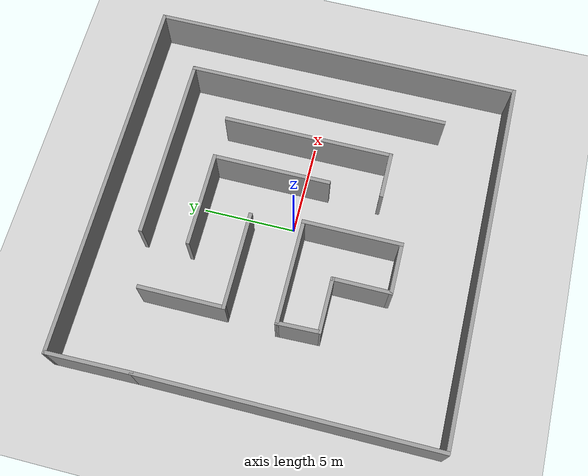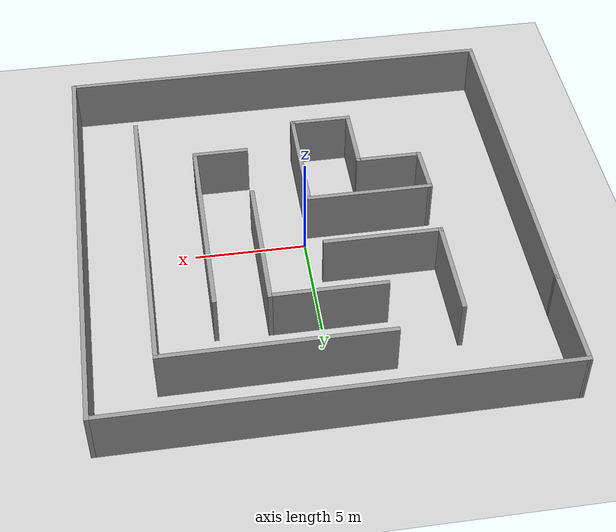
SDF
<sdf version="1.4">
 <world name="default">
  <light name="sun" type="directional">
   <pose>0 0 10 0 -0 0</pose>
   <diffuse>0.8 0.8 0.8 1</diffuse>
   <specular>0.2 0.2 0.2 1</specular>
   <attenuation>
    <range>1000</range>
    <constant>0.9</constant>
    <linear>0.01</linear>
    <quadratic>0.001</quadratic>
   </attenuation>
   <direction>-0.5 0.1 -0.9</direction>
  </light>
  <model name="ground_plane">
   <static>1</static>
   <link name="link">
    <collision name="collision">
     <geometry><plane><normal>0 0 1</normal><size>100 100</size></plane></geometry>
     <surface><friction><ode><mu>100</mu><mu2>50</mu2></ode></friction></surface>
    </collision>
    <visual name="visual">
     <cast_shadows>0</cast_shadows>
     <geometry><plane><normal>0 0 1</normal><size>100 100</size></plane></geometry>
     <material>
      <script><uri>file://media/materials/scripts/gazebo.material</uri><name>Gazebo/Grey</name></script>
     </material>
    </visual>
    <velocity_decay><linear>0</linear><angular>0</angular></velocity_decay>
   </link>
  </model>
  <model name="map2">
   <link name="Wall_11">
    <collision name="Wall_11_Collision">
     <geometry><box><size>15.7666 0.2 2.5</size></box></geometry>
     <pose>0 0 1.25 0 -0 0</pose>
    </collision>
    <visual name="Wall_11_Visual">
     <pose>0 0 1.25 0 -0 0</pose>
     <geometry><box><size>15.7666 0.2 2.5</size></box></geometry>
     <material>
      <script><uri>file://media/materials/scripts/gazebo.material</uri><name>Gazebo/Grey</name></script>
     </material>
    </visual>
    <velocity_decay><linear>0</linear><angular>0</angular></velocity_decay>
    <pose>-9.91698 -2.14515 0 0 0 -1.5708</pose>
   </link>
   <link name="Wall_12">
    <collision name="Wall_12_Collision">
     <geometry><box><size>20.0735 0.2 2.5</size></box></geometry>
     <pose>0 0 1.25 0 -0 0</pose>
    </collision>
    <visual name="Wall_12_Visual">
     <pose>0 0 1.25 0 -0 0</pose>
     <geometry><box><size>20.0735 0.2 2.5</size></box></geometry>
     <material>
      <script><uri>file://media/materials/scripts/gazebo.material</uri><name>Gazebo/Grey</name></script>
     </material>
    </visual>
    <velocity_decay><linear>0</linear><angular>0</angular></velocity_decay>
    <pose>0.019777 -9.92843 0 0 -0 0</pose>
   </link>
   <link name="Wall_13">
    <collision name="Wall_13_Collision">
     <geometry><box><size>20.1966 0.2 2.5</size></box></geometry>
     <pose>0 0 1.25 0 -0 0</pose>
    </collision>
    <visual name="Wall_13_Visual">
     <pose>0 0 1.25 0 -0 0</pose>
     <geometry><box><size>20.1966 0.2 2.5</size></box></geometry>
     <material>
      <script><uri>file://media/materials/scripts/gazebo.material</uri><name>Gazebo/Grey</name></script>
     </material>
    </visual>
    <velocity_decay><linear>0</linear><angular>0</angular></velocity_decay>
    <pose>9.95653 0.069855 0 0 -0 1.5708</pose>
   </link>
   <link name="Wall_14">
    <collision name="Wall_14_Collision">
     <geometry><box><size>20.135 0.2 2.5</size></box></geometry>
     <pose>0 0 1.25 0 -0 0</pose>
    </collision>
    <visual name="Wall_14_Visual">
     <pose>0 0 1.25 0 -0 0</pose>
     <geometry><box><size>20.135 0.2 2.5</size></box></geometry>
     <material>
      <script><uri>file://media/materials/scripts/gazebo.material</uri><name>Gazebo/Grey</name></script>
     </material>
    </visual>
    <velocity_decay><linear>0</linear><angular>0</angular></velocity_decay>
    <pose>-0.010987 10.0681 0 0 -0 3.14159</pose>
   </link>
   <link name="Wall_15">
    <collision name="Wall_15_Collision">
     <geometry><box><size>4.63043 0.2 2.5</size></box></geometry>
     <pose>0 0 1.25 0 -0 0</pose>
    </collision>
    <visual name="Wall_15_Visual">
     <pose>0 0 1.25 0 -0 0</pose>
     <geometry><box><size>4.63043 0.2 2.5</size></box></geometry>
     <material>
      <script><uri>file://media/materials/scripts/gazebo.material</uri><name>Gazebo/Grey</name></script>
     </material>
    </visual>
    <velocity_decay><linear>0</linear><angular>0</angular></velocity_decay>
    <pose>-9.94774 7.85313 0 0 0 -1.55691</pose>
   </link>
   <link name="Wall_17">
    <collision name="Wall_17_Collision">
     <geometry><box><size>4.63001 0.2 2.5</size></box></geometry>
     <pose>0 0 1.25 0 -0 0</pose>
    </collision>
    <visual name="Wall_17_Visual">
     <pose>0 0 1.25 0 -0 0</pose>
     <geometry><box><size>4.63001 0.2 2.5</size></box></geometry>
     <material>
      <script><uri>file://media/materials/scripts/gazebo.material</uri><name>Gazebo/Grey</name></script>
     </material>
    </visual>
    <velocity_decay><linear>0</linear><angular>0</angular></velocity_decay>
    <pose>-5.67155 4.40757 0 0 0 -1.5708</pose>
   </link>
   <link name="Wall_18">
    <collision name="Wall_18_Collision">
     <geometry><box><size>5.30681 0.2 2.5</size></box></geometry>
     <pose>0 0 1.25 0 -0 0</pose>
    </collision>
    <visual name="Wall_18_Visual">
     <pose>0 0 1.25 0 -0 0</pose>
     <geometry><box><size>5.30681 0.2 2.5</size></box></geometry>
     <material>
      <script><uri>file://media/materials/scripts/gazebo.material</uri><name>Gazebo/Grey</name></script>
     </material>
    </visual>
    <velocity_decay><linear>0</linear><angular>0</angular></velocity_decay>
    <pose>-3.11815 2.19257 0 0 -0 0</pose>
   </link>
   <link name="Wall_20">
    <collision name="Wall_20_Collision">
     <geometry><box><size>5.18376 0.2 2.5</size></box></geometry>
     <pose>0 0 1.25 0 -0 0</pose>
    </collision>
    <visual name="Wall_20_Visual">
     <pose>0 0 1.25 0 -0 0</pose>
     <geometry><box><size>5.18376 0.2 2.5</size></box></geometry>
     <material>
      <script><uri>file://media/materials/scripts/gazebo.material</uri><name>Gazebo/Grey</name></script>
     </material>
    </visual>
    <velocity_decay><linear>0</linear><angular>0</angular></velocity_decay>
    <pose>-0.287863 4.89979 0 0 -0 0</pose>
   </link>
   <link name="Wall_21">
    <collision name="Wall_21_Collision">
     <geometry><box><size>6.41432 0.2 2.5</size></box></geometry>
     <pose>0 0 1.25 0 -0 0</pose>
    </collision>
    <visual name="Wall_21_Visual">
     <pose>0 0 1.25 0 -0 0</pose>
     <geometry><box><size>6.41432 0.2 2.5</size></box></geometry>
     <material>
      <script><uri>file://media/materials/scripts/gazebo.material</uri><name>Gazebo/Grey</name></script>
     </material>
    </visual>
    <velocity_decay><linear>0</linear><angular>0</angular></velocity_decay>
    <pose>2.20402 1.79264 0 0 0 -1.5708</pose>
   </link>
   <link name="Wall_30">
    <collision name="Wall_30_Collision">
     <geometry><box><size>5.73751 0.2 2.5</size></box></geometry>
     <pose>0 0 1.25 0 -0 0</pose>
    </collision>
    <visual name="Wall_30_Visual">
     <pose>0 0 1.25 0 -0 0</pose>
     <geometry><box><size>5.73751 0.2 2.5</size></box></geometry>
     <material>
      <script><uri>file://media/materials/scripts/gazebo.material</uri><name>Gazebo/Grey</name></script>
     </material>
    </visual>
    <velocity_decay><linear>0</linear><angular>0</angular></velocity_decay>
    <pose>-3.02585 -0.576188 0 0 -0 0</pose>
   </link>
   <link name="Wall_31">
    <collision name="Wall_31_Collision">
     <geometry><box><size>5.36834 0.2 2.5</size></box></geometry>
     <pose>0 0 1.25 0 -0 0</pose>
    </collision>
    <visual name="Wall_31_Visual">
     <pose>0 0 1.25 0 -0 0</pose>
     <geometry><box><size>5.36834 0.2 2.5</size></box></geometry>
     <material>
      <script><uri>file://media/materials/scripts/gazebo.material</uri><name>Gazebo/Grey</name></script>
     </material>
    </visual>
    <velocity_decay><linear>0</linear><angular>0</angular></velocity_decay>
    <pose>-0.257099 -3.16036 0 0 0 -1.5708</pose>
   </link>
   <link name="Wall_32">
    <collision name="Wall_32_Collision">
     <geometry><box><size>2.8457 0.2 2.5</size></box></geometry>
     <pose>0 0 1.25 0 -0 0</pose>
    </collision>
    <visual name="Wall_32_Visual">
     <pose>0 0 1.25 0 -0 0</pose>
     <geometry><box><size>2.8457 0.2 2.5</size></box></geometry>
     <material>
      <script><uri>file://media/materials/scripts/gazebo.material</uri><name>Gazebo/Grey</name></script>
     </material>
    </visual>
    <velocity_decay><linear>0</linear><angular>0</angular></velocity_decay>
    <pose>-1.57995 -5.74453 0 0 -0 3.14159</pose>
   </link>
   <link name="Wall_33">
    <collision name="Wall_33_Collision">
     <geometry><box><size>3.21487 0.2 2.5</size></box></geometry>
     <pose>0 0 1.25 0 -0 0</pose>
    </collision>
    <visual name="Wall_33_Visual">
     <pose>0 0 1.25 0 -0 0</pose>
     <geometry><box><size>3.21487 0.2 2.5</size></box></geometry>
     <material>
      <script><uri>file://media/materials/scripts/gazebo.material</uri><name>Gazebo/Grey</name></script>
     </material>
    </visual>
    <velocity_decay><linear>0</linear><angular>0</angular></velocity_decay>
    <pose>-2.9028 -4.2371 0 0 -0 1.5708</pose>
   </link>
   <link name="Wall_34">
    <collision name="Wall_34_Collision">
     <geometry><box><size>3.03028 0.2 2.5</size></box></geometry>
     <pose>0 0 1.25 0 -0 0</pose>
    </collision>
    <visual name="Wall_34_Visual">
     <pose>0 0 1.25 0 -0 0</pose>
     <geometry><box><size>3.03028 0.2 2.5</size></box></geometry>
     <material>
      <script><uri>file://media/materials/scripts/gazebo.material</uri><name>Gazebo/Grey</name></script>
     </material>
    </visual>
    <velocity_decay><linear>0</linear><angular>0</angular></velocity_decay>
    <pose>-4.31794 -2.72966 0 0 -0 3.14159</pose>
   </link>
   <link name="Wall_35">
    <collision name="Wall_35_Collision">
     <geometry><box><size>2.35435 0.2 2.5</size></box></geometry>
     <pose>0 0 1.25 0 -0 0</pose>
    </collision>
    <visual name="Wall_35_Visual">
     <pose>0 0 1.25 0 -0 0</pose>
     <geometry><box><size>2.35435 0.2 2.5</size></box></geometry>
     <material>
      <script><uri>file://media/materials/scripts/gazebo.material</uri><name>Gazebo/Grey</name></script>
     </material>
    </visual>
    <velocity_decay><linear>0</linear><angular>0</angular></velocity_decay>
    <pose>-5.76384 -1.65292 0 0 -0 1.59936</pose>
   </link>
   <link name="Wall_37">
    <collision name="Wall_37_Collision">
     <geometry><box><size>10.0458 0.2 2.5</size></box></geometry>
     <pose>0 0 1.25 0 -0 0</pose>
    </collision>
    <visual name="Wall_37_Visual">
     <pose>0 0 1.25 0 -0 0</pose>
     <geometry><box><size>10.0458 0.2 2.5</size></box></geometry>
     <material>
      <script><uri>file://media/materials/scripts/gazebo.material</uri><name>Gazebo/Grey</name></script>
     </material>
    </visual>
    <velocity_decay><linear>0</linear><angular>0</angular></velocity_decay>
    <pose>2.21755 7.46056 0 0 -0 0</pose>
   </link>
   <link name="Wall_38">
    <collision name="Wall_38_Collision">
     <geometry><box><size>14.1957 0.2 2.5</size></box></geometry>
     <pose>0 0 1.25 0 -0 0</pose>
    </collision>
    <visual name="Wall_38_Visual">
     <pose>0 0 1.25 0 -0 0</pose>
     <geometry><box><size>14.1957 0.2 2.5</size></box></geometry>
     <material>
      <script><uri>file://media/materials/scripts/gazebo.material</uri><name>Gazebo/Grey</name></script>
     </material>
    </visual>
    <velocity_decay><linear>0</linear><angular>0</angular></velocity_decay>
    <pose>7.14047 0.462691 0 0 0 -1.5708</pose>
   </link>
   <link name="Wall_40">
    <collision name="Wall_40_Collision">
     <geometry><box><size>9.23214 0.2 2.5</size></box></geometry>
     <pose>0 0 1.25 0 -0 0</pose>
    </collision>
    <visual name="Wall_40_Visual">
     <pose>0 0 1.25 0 -0 0</pose>
     <geometry><box><size>9.23214 0.2 2.5</size></box></geometry>
     <material>
      <script><uri>file://media/materials/scripts/gazebo.material</uri><name>Gazebo/Grey</name></script>
     </material>
    </visual>
    <velocity_decay><linear>0</linear><angular>0</angular></velocity_decay>
    <pose>4.53661 0.340635 0 0 0 -1.5708</pose>
   </link>
   <link name="Wall_41">
    <collision name="Wall_41_Collision">
     <geometry><box><size>2.55975 0.2 2.5</size></box></geometry>
     <pose>0 0 1.25 0 -0 0</pose>
    </collision>
    <visual name="Wall_41_Visual">
     <pose>0 0 1.25 0 -0 0</pose>
     <geometry><box><size>2.55975 0.2 2.5</size></box></geometry>
     <material>
      <script><uri>file://media/materials/scripts/gazebo.material</uri><name>Gazebo/Grey</name></script>
     </material>
    </visual>
    <velocity_decay><linear>0</linear><angular>0</angular></velocity_decay>
    <pose>3.35674 -4.17543 0 0 -0 3.14159</pose>
   </link>
   <static>1</static>
  </model>
  <physics type="ode">
   <max_step_size>0.001</max_step_size>
   <real_time_factor>1</real_time_factor>
   <real_time_update_rate>1000</real_time_update_rate>
   <gravity>0 0 -9.8</gravity>
  </physics>
  <scene><ambient>0.4 0.4 0.4 1</ambient><background>0.7 0.7 0.7 1</background><shadows>1</shadows></scene>
  <spherical_coordinates>
   <surface_model>EARTH_WGS84</surface_model>
   <latitude_deg>0</latitude_deg>
   <longitude_deg>0</longitude_deg>
   <elevation>0</elevation>
   <heading_deg>0</heading_deg>
  </spherical_coordinates>
 </world>
</sdf>
